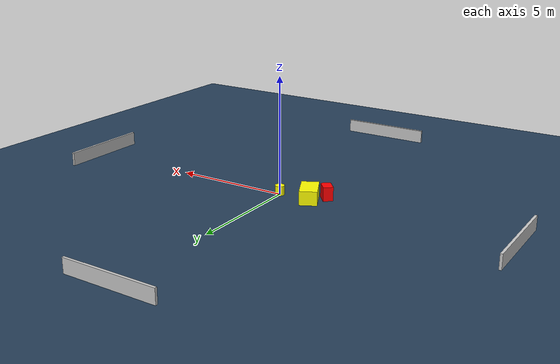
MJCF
<?xml version="1.0" ?>
<mujoco model="generated_environment">
  <option timestep="0.01" integrator="RK4" cone="elliptic"/>
  <default>
    <geom density="1"/>
  </default>
  <asset>
    <texture builtin="gradient" height="3072" name="skybox" rgb1="0.3 0.5 0.7" rgb2="0 0 0" type="skybox" width="512"/>
    <texture builtin="checker" height="300" name="groundplane" rgb1="0.2 0.3 0.4" rgb2="0.1 0.2 0.3" type="2d" width="300"/>
    <material name="groundplane" reflectance="0.2" texrepeat="5 5" texture="groundplane"/>
  </asset>
  <worldbody>
    <light dir="0 0 -1" directional="true" pos="0 0 1.5"/>
    <geom condim="3" friction="0.5 0.005 0.001" material="groundplane" name="floor" pos="0 0 0" size="0 0 0.05" type="plane"/>
    <body name="walls">
      <geom name="wall_1" condim="4" pos="-10.0 0.0 0.3" rgba="0.800000011920929 0.800000011920929 0.800000011920929 1.0" size="0.05 2.0 0.3" type="box"/>
      <geom name="wall_2" condim="4" pos="10.0 0.0 0.3" rgba="0.800000011920929 0.800000011920929 0.800000011920929 1.0" size="0.05 2.0 0.3" type="box"/>
      <geom name="wall_3" condim="4" pos="0.0 -10.0 0.3" rgba="0.800000011920929 0.800000011920929 0.800000011920929 1.0" size="2.0 0.05 0.3" type="box"/>
      <geom name="wall_4" condim="4" pos="0.0 10.0 0.3" rgba="0.800000011920929 0.800000011920929 0.800000011920929 1.0" size="2.0 0.05 0.3" type="box"/>
    </body>
    <body name="robot">
      <joint name="joint_x" type="slide" pos="0 0 0" axis="1 0 0"/>
      <joint name="joint_y" type="slide" pos="0 0 0" axis="0 1 0"/>
      <geom name="robot" type="cylinder" pos="0.0 0.0 0.2" size="0.2 0.2 0.0" mass="5.0" friction="1.0 0.005 0.0001" condim="4" rgba="1.0 1.0 0.0 1.0"/>
    </body>
    <body name="obstacle_1_movable">
      <geom name="obstacle_1_movable" condim="4" pos="-1.382413141533182 -0.058279691226446904 0.3" euler="0 0 116.2752385885021" friction="0.0 0.005 0.001" rgba="1.0 1.0 0.0 1.0" size="0.6005711732839487 0.3707846834049916 0.3" type="box" mass="0.1"/>
      <joint type="free"/>
    </body>
    <body name="obstacle_2_static">
      <geom name="obstacle_2_static" condim="4" pos="-1.903121834579395 -0.593218349727721 0.3" euler="0 0 220.89056779014763" friction="0.0 0.005 0.001" rgba="1.0 0.0 0.0 1.0" size="0.21094178963038623 0.287780530362441 0.3" type="box"/>
    </body>
  </worldbody>
  <actuator>
    <motor name="actuator_x" joint="joint_x" gear="1" ctrlrange="-1 1"/>
    <motor name="actuator_y" joint="joint_y" gear="1" ctrlrange="-1 1"/>
  </actuator>
</mujoco>
